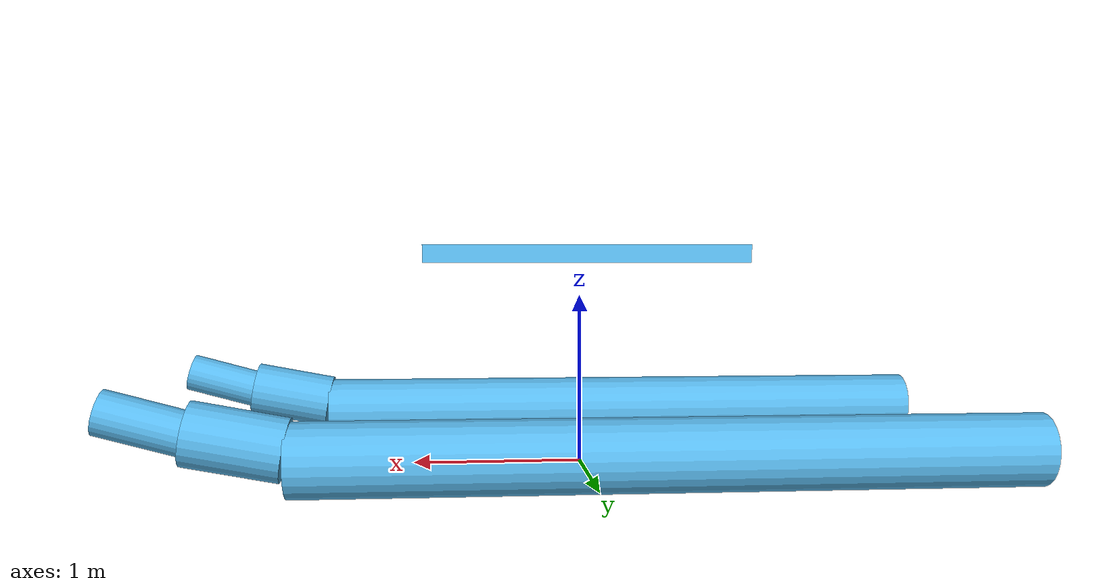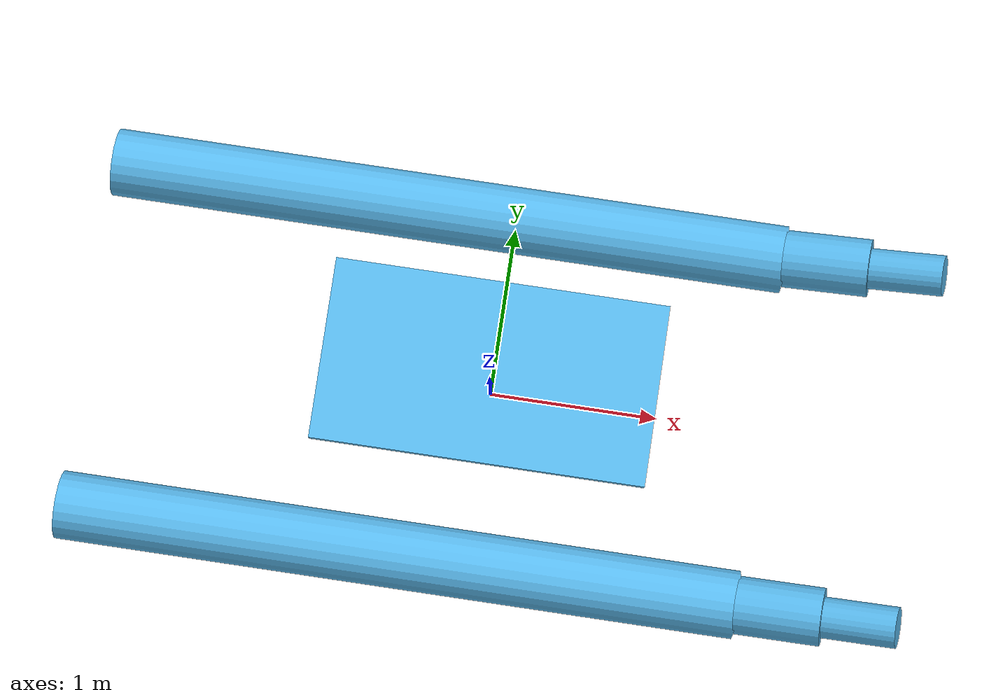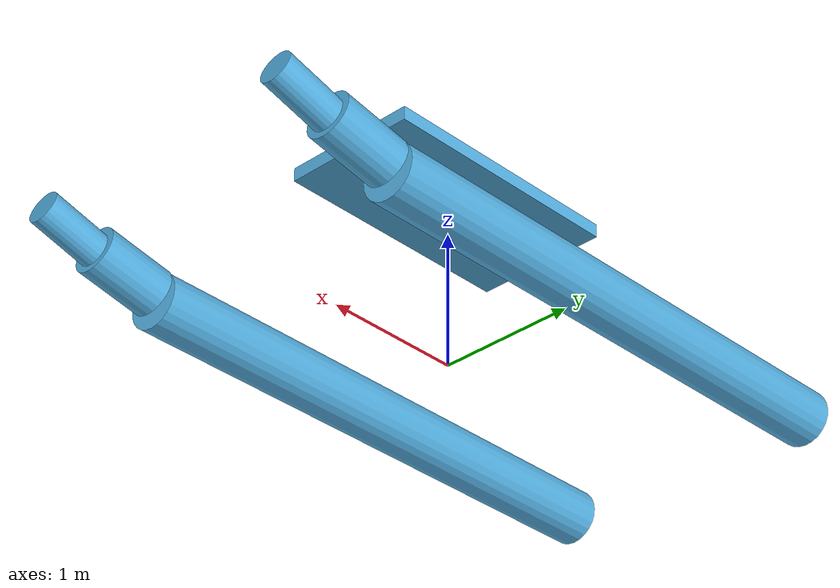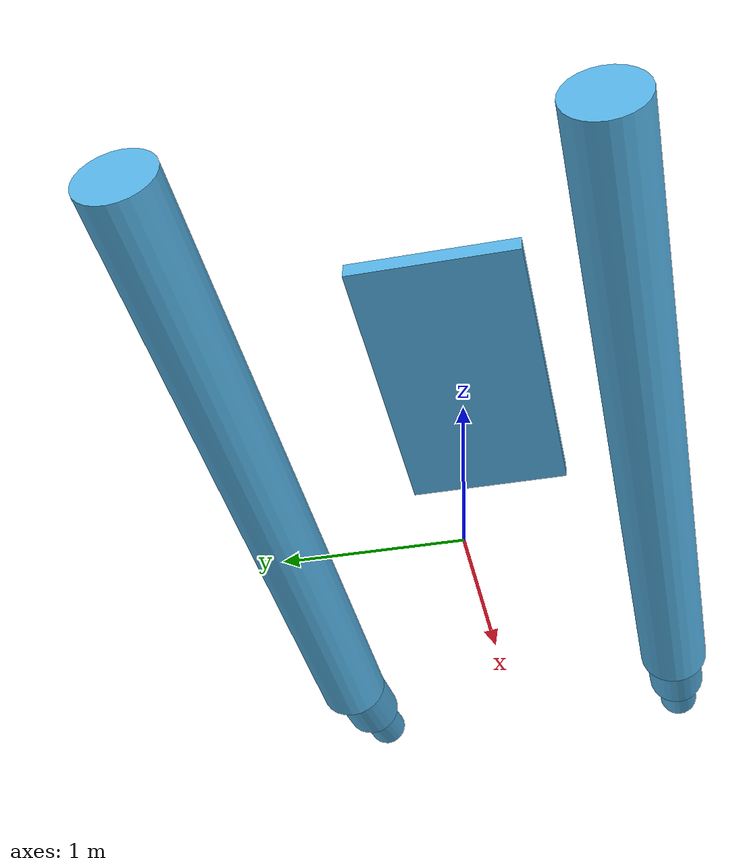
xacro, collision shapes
<?xml version="1.0"?>
<robot xmlns:xacro="http://ros.org/wiki/xacro" name="wam-v">
  <!-- Required arg for melodic and kinetic... -->
  <xacro:arg name="namespace" default="wamv"/>
  <xacro:property name="namespace" value="$(arg namespace)" scope="global" />
  <!-- Macro for creating the main collisions as simple shapes. -->
  <xacro:macro name="main_collisions" params="prefix reflect:=1">
    <!-- Main float -->
    <collision name="${prefix}_float">
      <origin xyz="-0.4 ${1.03*reflect} 0.2" rpy="${0*reflect} 1.57 0" />
      <geometry>
        <cylinder length="4" radius="0.2" />
      </geometry>
    </collision>

    <collision name="${prefix}_mid_float">
      <origin xyz="1.85 ${1.03*reflect} 0.3" rpy="${0*reflect} 1.38 0" />
      <geometry>
        <cylinder length="0.5" radius="0.17" />
      </geometry>
    </collision>
    <collision name="${prefix}_front_float">
      <origin xyz="2.3 ${1.03*reflect} 0.4" rpy="${0*reflect} 1.3 0" />
      <geometry>
        <cylinder length="0.45" radius="0.12" />
      </geometry>
    </collision>
  </xacro:macro>

  <link name="${namespace}/base_link">
  </link>

  <joint name="${namespace}/dummy_joint" type = "fixed">
    <parent link="${namespace}/base_link"/>
    <child link="${namespace}/dummy_link"/>
  </joint>

  <!-- Basic model of the 16' WAM-V USV -->
  <link name="${namespace}/dummy_link">
    <visual>
      <geometry>
        <mesh filename="package://wamv_description/models/WAM-V-Base/mesh/WEC.STL" scale="0.001 0.001 0.001"/>
      </geometry>
      <origin xyz="2 -3.175 -1.575" rpy="1.57 0 3.14" />
    </visual>

    <!-- Left base collisions -->
    <xacro:main_collisions prefix="left" reflect="1" />

    <!-- Right side collisions -->
    <xacro:main_collisions prefix="right" reflect="-1" />

     <!-- Top base -->
    <collision name="top_base">
      <origin xyz="0 -0 1.25" rpy="0 0 0" />
      <geometry>
        <box size="1.85 1 0.1" />
      </geometry>
    </collision>

    <inertial>
      <!-- From WAM-V spec sheet -->
      <mass value="180.0"/>
      <inertia ixx="120.0" ixy="0.0" ixz="0.0" iyy="393" iyz="0.0" izz="446.0"/>
    </inertial>
  </link>

</robot>
